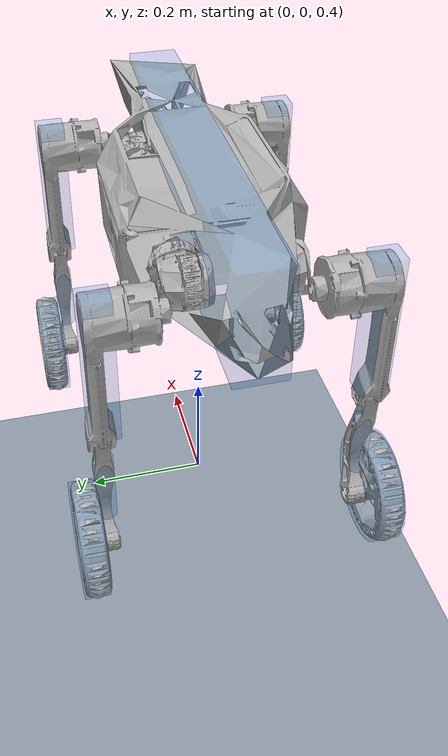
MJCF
<mujoco model="VQRWheel">
  <default>
    <default class="robot">
      <default class="motor">
        <joint />
        <motor />
      </default>
      <default class="visual">
        <geom material="visualgeom" contype="0" conaffinity="0" group="2" />
      </default>
      <default class="collision">
        <geom material="collision_material" condim="3" contype="0" conaffinity="1" group="1" solref="0.005 1" friction="1 0.01 0.01" />
        <equality solimp="0.99 0.999 1e-05" solref="0.005 1" />
      </default>
    </default>
  </default>

  <compiler angle="radian" />
  <compiler autolimits="true"/>

  <asset>
    <material name="default_material" rgba="0.7 0.7 0.7 1" />
    <material name="collision_material" rgba="0.0 0.4 0.8 0.2" />
    <texture type="2d" name="checker" builtin="checker" rgb1="0.2 0.3 0.4" rgb2="0.9 0.9 0.9" width="500" height="500"/>
    <material name="checker_mat" texture="checker" specular="1" shininess="1" texrepeat="15 15"/>

    <mesh name="torso.STL" file="../meshes/torso.STL" />
    <mesh name="fl_hip.STL" file="../meshes/hip.STL" />
    <mesh name="fr_hip.STL" file="../meshes/hip.STL" scale="1 -1 1"/>
    <mesh name="hl_hip.STL" file="../meshes/hip.STL" scale="-1 1 1"/>
    <mesh name="hr_hip.STL" file="../meshes/hip.STL" scale="-1 -1 1"/>
    <mesh name="fl_thigh.STL" file="../meshes/thigh.STL" />
    <mesh name="fr_thigh.STL" file="../meshes/thigh.STL" scale="1 -1 1"/>
    <mesh name="hl_thigh.STL" file="../meshes/thigh.STL" />
    <mesh name="hr_thigh.STL" file="../meshes/thigh.STL" scale="1 -1 1"/>
    <mesh name="fl_shank.STL" file="../meshes/shank.STL" />
    <mesh name="fr_shank.STL" file="../meshes/shank.STL" scale="1 -1 1"/>
    <mesh name="hl_shank.STL" file="../meshes/shank.STL" />
    <mesh name="hr_shank.STL" file="../meshes/shank.STL" scale="1 -1 1"/>
    <mesh name="wheel.STL" file="../meshes/wheel.STL" />
  </asset>

  <worldbody>

    <geom name="floor" type="plane" size="10 10 0.1" pos="0 0 0" material="checker_mat"/>
    <light directional="true" pos="-0.5 0.5 3" dir="0 0 -1"/>

    <body name="TORSO" pos="0 0 1" quat="1 0 0 0" childclass="robot">
      <freejoint name="floating_base" />
      <site name="imu_site" pos="0 0 0" size="0.005" rgba="1 0 0 1"/>
      <inertial pos="0 0 0" mass="17.46" diaginertia="0.241554 0.524066 0.447501"/>
      <geom name="TORSO_collision" pos="0 0 0" type="box" size="0.35 0.04 0.09" class="collision" />
      <geom name="TORSO_visual" pos="0 0 0" type="mesh" mesh="torso.STL" material="default_material" class="visual" />

      <body name="FL_HIP" pos="0.1924 0.07 -0.0255" quat="1 0 0 0">
        <joint name="FL_HipX_joint" type="hinge" ref="0.0" class="motor" range="-0.7854 0.7854" axis="-1 0 0" />
        <inertial pos="0 0 0" mass="1" diaginertia="0.00078043 0.00068757 0.00078043" />
        <geom name="FL_HIP_visual" pos="-0.056 0 0" quat="0 0 1 0" type="mesh" mesh="fl_hip.STL" material="default_material" class="visual" />
        <body name="FL_THIGH" pos="0.056 0.03 0" quat="1 0 0 0">
          <joint name="FL_HipY_joint" type="hinge" ref="0.0" class="motor" range="-3.4 2.4" axis="0 -1 0" />
          <inertial pos="0 0.06 -0.08" mass="1.5" diaginertia="0.0104 0.0082 0.0033" />
          <geom name="FL_THIGH_collision" pos="-0.01 0.1 -0.07" type="box" size="0.02 0.0225 0.12" class="collision" />
          <geom name="FL_THIGH_visual" pos="0 0 0" type="mesh" mesh="fl_thigh.STL" material="default_material" class="visual" />
          <body name="FL_SHANK" pos="0 0.094 -0.212" quat="1 0 0 0">
            <joint name="FL_Knee_joint" type="hinge" ref="0.0" class="motor" range="0.8116 2.7663" axis="0 -1 0" />
            <inertial pos="0 0.01 -0.08" mass="0.15" diaginertia="0.00089039 0.00090672 3.1266e-05" />
            <geom name="FL_SHANK_collision" pos="0 0.01 -0.1" type="cylinder" size="0.015 0.06" class="collision" />
            <geom name="FL_SHANK_visual" pos="0 0 0" type="mesh" mesh="fl_shank.STL" material="default_material" class="visual" />
            <body name="FL_WHEEL" pos="0 0.0425 -0.213" quat="1 0 0 0">
              <joint name="FL_WHEEL" type="hinge" class="motor" limited="false" axis="0 -1 0" />
              <inertial pos="0 0 0" mass="1.2" diaginertia="0.0026443 0.0049686 0.0026443" />
              <geom name="FL_WHEEL_collision" pos="0 0 0" quat="0.707070 0.707143 0 0" type="cylinder" size="0.091 0.02" class="collision" />
              <geom name="FL_WHEEL_visual" pos="0 0 0" quat="0 0 0 1" type="mesh" mesh="wheel.STL" material="default_material" class="visual" />
            </body>
          </body>
        </body>
      </body>

      <body name="FR_HIP" pos="0.1924 -0.07 -0.0255" quat="1 0 0 0">
        <joint name="FR_HipX_joint" type="hinge" ref="0.0" class="motor" range="-0.7854 0.7854" axis="-1 0 0" />
        <inertial pos="0 0 0" mass="1" diaginertia="0.00078043 0.00068757 0.00078043" />
        <geom name="FR_HIP_visual" pos="-0.056 0 0" quat="0 0 1 0" type="mesh" mesh="fr_hip.STL" material="default_material" class="visual" />
        <body name="FR_THIGH" pos="0.056 -0.03 0" quat="1 0 0 0">
          <joint name="FR_HipY_joint" type="hinge" ref="0.0" class="motor" range="-3.4 2.4" axis="0 -1 0" />
          <inertial pos="0 -0.06 -0.08" mass="1.5" diaginertia="0.0104 0.0082 0.0033" />
          <geom name="FR_THIGH_collision" pos="-0.01 -0.1 -0.07" type="box" size="0.02 0.0225 0.12" class="collision" />
          <geom name="FR_THIGH_visual" pos="0 0 0" type="mesh" mesh="fr_thigh.STL" material="default_material" class="visual" />
          <body name="FR_SHANK" pos="0 -0.094 -0.212" quat="1 0 0 0">
            <joint name="FR_Knee_joint" type="hinge" ref="0.0" class="motor" range="0.8116 2.7663" axis="0 -1 0" />
            <inertial pos="0 -0.01 -0.08" mass="0.15" diaginertia="0.00089039 0.00090672 3.1266e-05" />
            <geom name="FR_SHANK_collision" pos="0 -0.01 -0.1" type="cylinder" size="0.015 0.06" class="collision" />
            <geom name="FR_SHANK_visual" pos="0 0 0" type="mesh" mesh="fr_shank.STL" material="default_material" class="visual" />
            <body name="FR_WHEEL" pos="0 -0.0425 -0.213" quat="1 0 0 0">
              <joint name="FR_WHEEL" type="hinge" class="motor" limited="false" axis="0 -1 0" />
              <inertial pos="0 0 0" mass="1.2" diaginertia="0.0026443 0.0049686 0.0026443" />
              <geom name="FR_WHEEL_collision" pos="0 0 0" quat="0.707070 0.707143 0 0" type="cylinder" size="0.091 0.02" class="collision" />
              <geom name="FR_WHEEL_visual" pos="0 0 0" quat="1 0 0 0" type="mesh" mesh="wheel.STL" material="default_material" class="visual" />
            </body>
          </body>
        </body>
      </body>

      <body name="HL_HIP" pos="-0.1924 0.07 -0.0255" quat="1 0 0 0">
        <joint name="HL_HipX_joint" type="hinge" ref="0.0" class="motor" range="-0.7854 0.7854" axis="-1 0 0" />
        <inertial pos="0 0 0" mass="1" diaginertia="0.00078043 0.00068757 0.00078043" />
        <geom name="HL_HIP_visual" pos="0.056 0 0" quat="0 0 1 0" type="mesh" mesh="hl_hip.STL" material="default_material" class="visual" />
        <body name="HL_THIGH" pos="-0.056 0.03 0" quat="1 0 0 0">
          <joint name="HL_HipY_joint" type="hinge" ref="0.0" class="motor" range="-3.4 2.4" axis="0 -1 0" />
          <inertial pos="0 0.06 -0.08" mass="1.5" diaginertia="0.0104 0.0082 0.0033" />
          <geom name="HL_THIGH_collision" pos="-0.01 0.1 -0.07" type="box" size="0.02 0.0225 0.12" class="collision" />
          <geom name="HL_THIGH_visual" pos="0 0 0" type="mesh" mesh="hl_thigh.STL" material="default_material" class="visual" />
          <body name="HL_SHANK" pos="0 0.094 -0.212" quat="1 0 0 0">
            <joint name="HL_Knee_joint" type="hinge" ref="0.0" class="motor" range="0.8116 2.7663" axis="0 -1 0" />
            <inertial pos="0 0.01 -0.08" mass="0.15" diaginertia="0.00089039 0.00090672 3.1266e-05" />
            <geom name="HL_SHANK_collision" pos="0 0.01 -0.1" type="cylinder" size="0.015 0.06" class="collision" />
            <geom name="HL_SHANK_visual" pos="0 0 0" type="mesh" mesh="hl_shank.STL" material="default_material" class="visual" />
            <body name="HL_WHEEL" pos="0 0.0425 -0.213" quat="1 0 0 0">
              <joint name="HL_WHEEL" type="hinge" class="motor" limited="false" axis="0 -1 0" />
              <inertial pos="0 0 0" mass="1.2" diaginertia="0.0026443 0.0049686 0.0026443" />
              <geom name="HL_WHEEL_collision" pos="0 0 0" quat="0.707070 0.707143 0 0" type="cylinder" size="0.091 0.02" class="collision" />
              <geom name="HL_WHEEL_visual" pos="0 0 0" quat="1 0 0 0" type="mesh" mesh="wheel.STL" material="default_material" class="visual" />
            </body>
          </body>
        </body>
      </body>

      <body name="HR_HIP" pos="-0.1924 -0.07 -0.0255" quat="1 0 0 0">
        <joint name="HR_HipX_joint" type="hinge" ref="0.0" class="motor" range="-0.7854 0.7854" axis="-1 0 0" />
        <inertial pos="0 0 0" mass="1" diaginertia="0.00078043 0.00068757 0.00078043" />
        <geom name="HR_HIP_visual" pos="0.056 0 0" quat="0 0 1 0" type="mesh" mesh="hr_hip.STL" material="default_material" class="visual" />
        <body name="HR_THIGH" pos="-0.056 -0.03 0" quat="1 0 0 0">
          <joint name="HR_HipY_joint" type="hinge" ref="0.0" class="motor" range="-3.4 2.4" axis="0 -1 0" />
          <inertial pos="0 -0.06 -0.08" mass="1.5" diaginertia="0.0104 0.0082 0.0033" />
          <geom name="HR_THIGH_collision" pos="-0.01 -0.1 -0.07" type="box" size="0.02 0.0225 0.12" class="collision" />
          <geom name="HR_THIGH_visual" pos="0 0 0" type="mesh" mesh="hr_thigh.STL" material="default_material" class="visual" />
          <body name="HR_SHANK" pos="0 -0.094 -0.212" quat="1 0 0 0">
            <joint name="HR_Knee_joint" type="hinge" ref="0.0" class="motor" range="0.8116 2.7663" axis="0 -1 0" />
            <inertial pos="0 -0.01 -0.08" mass="0.15" diaginertia="0.00089039 0.00090672 3.1266e-05" />
            <geom name="HR_SHANK_collision" pos="0 -0.01 -0.1" type="cylinder" size="0.015 0.06" class="collision" />
            <geom name="HR_SHANK_visual" pos="0 0 0" type="mesh" mesh="hr_shank.STL" material="default_material" class="visual" />
            <body name="HR_WHEEL" pos="0 -0.0425 -0.213" quat="1 0 0 0">
              <joint name="HR_WHEEL" type="hinge" class="motor" limited="false" axis="0 -1 0" />
              <inertial pos="0 0 0" mass="1.2" diaginertia="0.0026443 0.0049686 0.0026443" />
              <geom name="HR_WHEEL_collision" pos="0 0 0" quat="0.707070 0.707143 0 0" type="cylinder" size="0.091 0.02" class="collision" />
              <geom name="HR_WHEEL_visual" pos="0 0 0" quat="1 0 0 0" type="mesh" mesh="wheel.STL" material="default_material" class="visual" />
            </body>
          </body>
        </body>
      </body>

      <site name="TORSO_site" pos="0 0 0" quat="1 0 0 0" />
      <camera name="front_camera" mode="track" fovy="90.0" quat="4.329780281177467e-17 4.329780281177466e-17 0.7071067811865475 0.7071067811865476" pos="0.0 2.0 0.5" />
      <camera name="side_camera" mode="track" fovy="90.0" quat="-0.5 -0.4999999999999999 0.5 0.5000000000000001" pos="-2.0 0.0 0.5" />
    </body>
  </worldbody>

  <actuator>
    <motor name="FL_HipX_joint_ctrl" joint="FL_HipX_joint" class="motor" gear="1" ctrlrange="-60 60"/>
    <motor name="FL_HipY_joint_ctrl" joint="FL_HipY_joint" class="motor" gear="1" ctrlrange="-60 60"/>
    <motor name="FL_Knee_joint_ctrl" joint="FL_Knee_joint" class="motor" gear="1" ctrlrange="-60 60"/>
    <motor name="FL_WHEEL_ctrl" joint="FL_WHEEL" class="motor" gear="1" ctrlrange="-20 20"/>
    <motor name="FR_HipX_joint_ctrl" joint="FR_HipX_joint" class="motor" gear="1" ctrlrange="-60 60"/>
    <motor name="FR_HipY_joint_ctrl" joint="FR_HipY_joint" class="motor" gear="1" ctrlrange="-60 60"/>
    <motor name="FR_Knee_joint_ctrl" joint="FR_Knee_joint" class="motor" gear="1" ctrlrange="-60 60"/>
    <motor name="FR_WHEEL_ctrl" joint="FR_WHEEL" class="motor" gear="1" ctrlrange="-20 20"/>
    <motor name="HL_HipX_joint_ctrl" joint="HL_HipX_joint" class="motor" gear="1" ctrlrange="-60 60"/>
    <motor name="HL_HipY_joint_ctrl" joint="HL_HipY_joint" class="motor" gear="1" ctrlrange="-60 60"/>
    <motor name="HL_Knee_joint_ctrl" joint="HL_Knee_joint" class="motor" gear="1" ctrlrange="-60 60"/>
    <motor name="HL_WHEEL_ctrl" joint="HL_WHEEL" class="motor" gear="1" ctrlrange="-20 20"/>
    <motor name="HR_HipX_joint_ctrl" joint="HR_HipX_joint" class="motor" gear="1" ctrlrange="-60 60"/>
    <motor name="HR_HipY_joint_ctrl" joint="HR_HipY_joint" class="motor" gear="1" ctrlrange="-60 60"/>
    <motor name="HR_Knee_joint_ctrl" joint="HR_Knee_joint" class="motor" gear="1" ctrlrange="-60 60"/>
    <motor name="HR_WHEEL_ctrl" joint="HR_WHEEL" class="motor" gear="1" ctrlrange="-20 20"/>
  </actuator>

  <contact>
    <exclude body1="TORSO" body2="FL_HIP" />
    <exclude body1="FL_HIP" body2="FL_THIGH" />
    <exclude body1="FL_THIGH" body2="FL_SHANK" />
    <exclude body1="FL_SHANK" body2="FL_WHEEL" />
    <exclude body1="TORSO" body2="FR_HIP" />
    <exclude body1="FR_HIP" body2="FR_THIGH" />
    <exclude body1="FR_THIGH" body2="FR_SHANK" />
    <exclude body1="FR_SHANK" body2="FR_WHEEL" />
    <exclude body1="TORSO" body2="HL_HIP" />
    <exclude body1="HL_HIP" body2="HL_THIGH" />
    <exclude body1="HL_THIGH" body2="HL_SHANK" />
    <exclude body1="HL_SHANK" body2="HL_WHEEL" />
    <exclude body1="TORSO" body2="HR_HIP" />
    <exclude body1="HR_HIP" body2="HR_THIGH" />
    <exclude body1="HR_THIGH" body2="HR_SHANK" />
    <exclude body1="HR_SHANK" body2="HR_WHEEL" />
  </contact>

  <sensor>
    <framepos name="TORSO_site_pos" objtype="site" objname="TORSO_site" />
    <framequat name="TORSO_site_quat" objtype="site" objname="TORSO_site" />
    <framelinvel name="TORSO_site_linvel" objtype="site" objname="TORSO_site" />
    <frameangvel name="TORSO_site_angvel" objtype="site" objname="TORSO_site" />
    <velocimeter name="TORSO_site_vel" site="TORSO_site" />
    <accelerometer site="imu_site"/>
    <gyro          site="imu_site"/>
  </sensor>
</mujoco>
